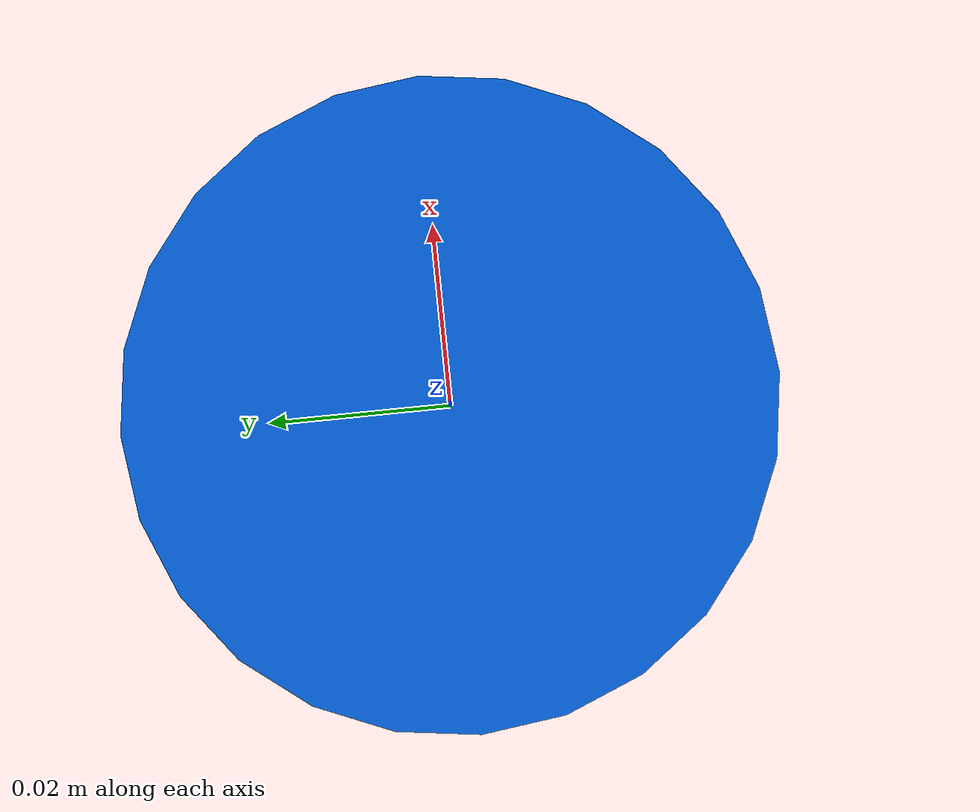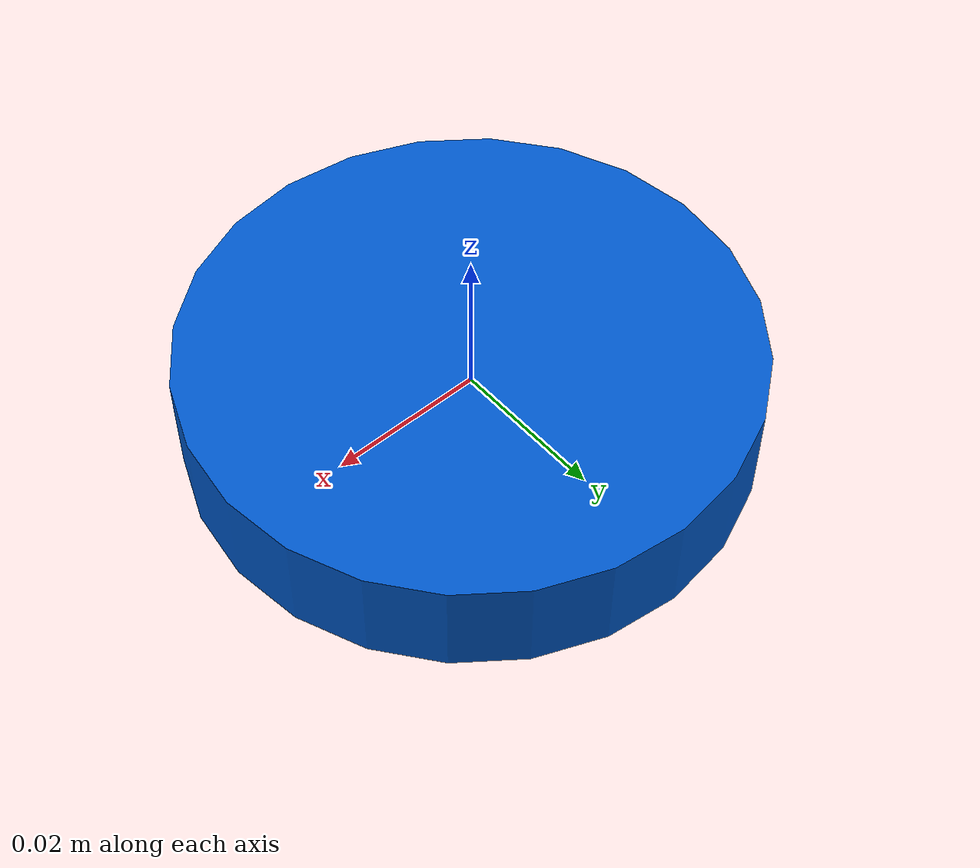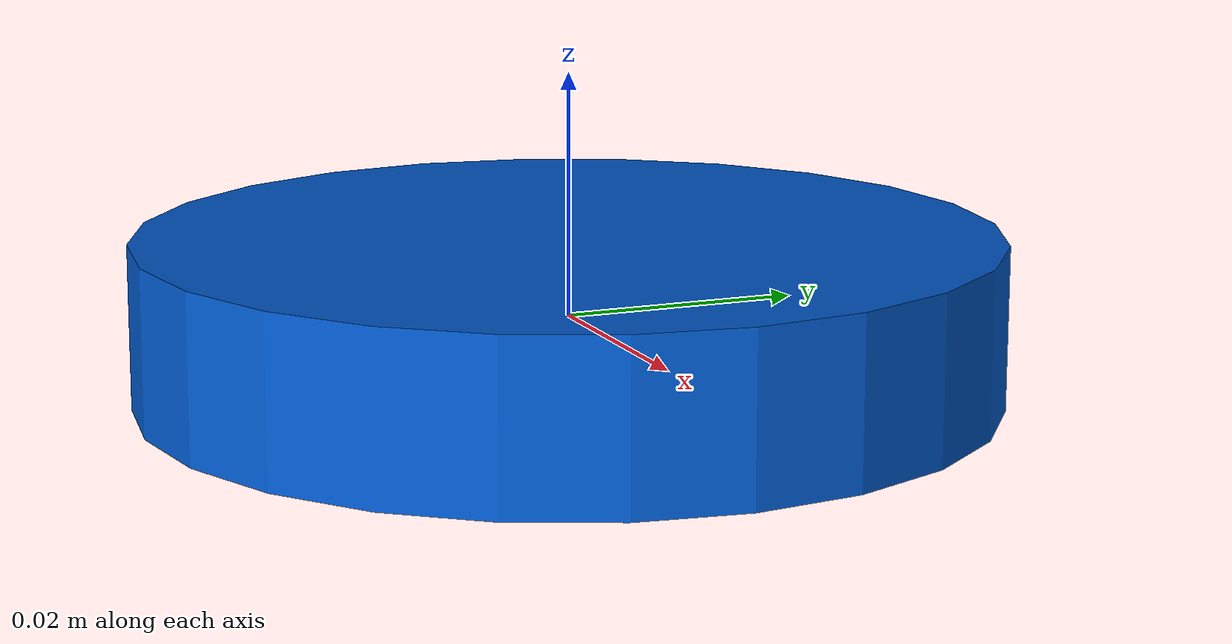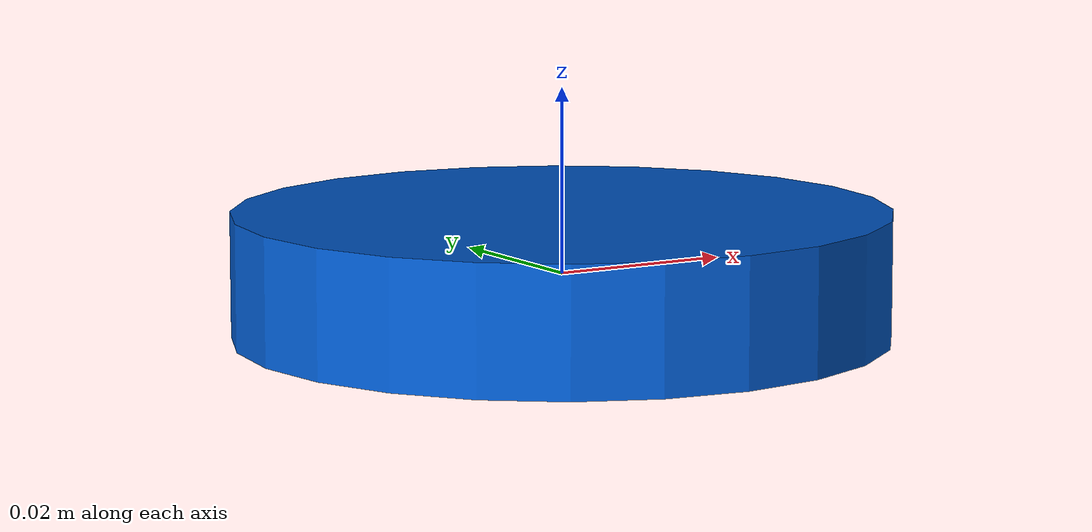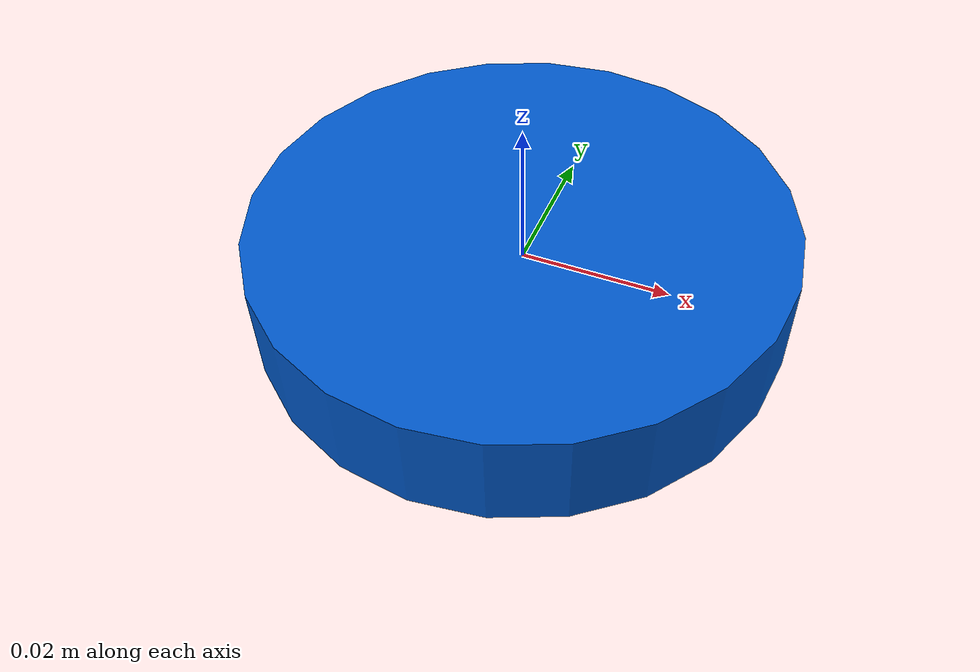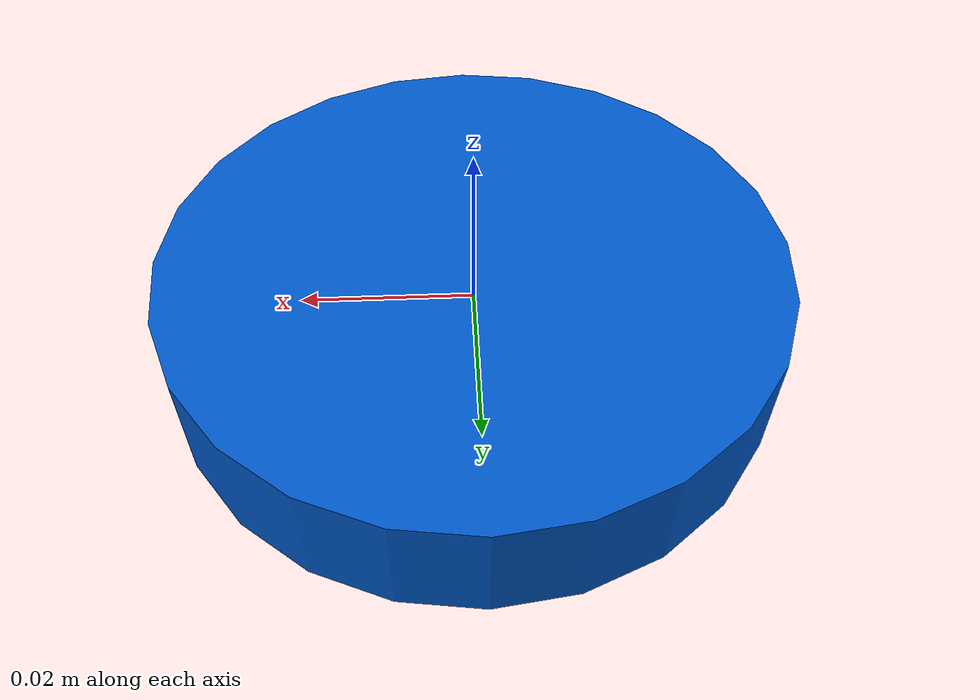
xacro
<?xml version="1.0"?>
<robot xmlns:xacro="http://www.ros.org/wiki/xacro" name="onrobot_quick_changer_qc-r_v3">

<!-- OnRobot Quick Changer, robot side (QC-R v3), alone on a 'parent' link, to view it or to check it with 'check_urdf'. -->

<xacro:arg name="prefix" default="qc_"/>
<xacro:arg name="parent" default="tool0"/>
<xacro:arg name="visual_mesh" default=""/>
<xacro:arg name="collision_mesh" default=""/>

<xacro:include filename="$(find openrosde_onrobot_description)/urdf/onrobot_quick_changer_qc-r_v3.xacro"/>

<link name="$(arg parent)"/>

<xacro:onrobot_qc_r_v3 parent="$(arg parent)" prefix="$(arg prefix)" visual_mesh="$(arg visual_mesh)" collision_mesh="$(arg collision_mesh)">
  <origin xyz="0 0 0" rpy="0 0 0"/>
</xacro:onrobot_qc_r_v3>

</robot>

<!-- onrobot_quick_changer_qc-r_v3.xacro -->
<robot xmlns:xacro="http://www.ros.org/wiki/xacro">

<!-- OnRobot Quick Changer, robot side (QC-R v3), mounted on 'parent' at 'origin'. -->
<!-- 'prefix' starts the name of every link, joint, and material, so the default 'qc_' gives 'qc_robot_mount', 'qc_body', and 'qc_tool_mount'. -->
<!-- The body is drawn as a cylinder of the size of the quick changer, 71 mm across and 13.6 mm thick, centered on 'qc_body' as the meshes of the quick changer are. -->
<!-- The tool side, where a gripper mounts, sits on 'qc_tool_mount', 13.6 mm above 'qc_robot_mount'. -->
<xacro:macro name="onrobot_qc_r_v3" params="parent *origin prefix:=qc_ visual_mesh:='' collision_mesh:=''">

  <link name="${prefix}robot_mount"/>

  <joint name="${prefix}robot_mount_joint" type="fixed">
    <xacro:insert_block name="origin" />
    <parent link="${parent}"/>
    <child link="${prefix}robot_mount"/>
  </joint>

  <link name="${prefix}body">
    <visual>
      <geometry>
        <xacro:if value="${visual_mesh != ''}">
          <mesh filename="${visual_mesh}"/>
        </xacro:if>
        <xacro:unless value="${visual_mesh != ''}">
          <cylinder radius="0.0355" length="0.0136"/>
        </xacro:unless>
      </geometry>
      <material name="${prefix}blue">
        <color rgba="0 0.35 0.8 1"/>
      </material>
    </visual>
    <collision>
      <geometry>
        <xacro:if value="${collision_mesh != ''}">
          <mesh filename="${collision_mesh}"/>
        </xacro:if>
        <xacro:unless value="${collision_mesh != ''}">
          <cylinder radius="0.0355" length="0.0136"/>
        </xacro:unless>
      </geometry>
    </collision>
    <inertial>
      <mass value="0.13"/>
      <origin xyz="0 0 0"/>
      <inertia ixx="4.296185833333333e-05" iyy="4.296185833333333e-05" izz="8.191625e-05" ixy="0" ixz="0" iyz="0"/>
    </inertial>
  </link>

  <joint name="${prefix}robot_joint" type="fixed">
    <parent link="${prefix}robot_mount"/>
    <child link="${prefix}body"/>
    <origin xyz="0 0 0"/>
  </joint>

  <link name="${prefix}tool_mount"/>

  <joint name="${prefix}tool_joint" type="fixed">
    <parent link="${prefix}body"/>
    <child link="${prefix}tool_mount"/>
    <origin xyz="0 0 0.0136"/>
  </joint>

  <!-- Gazebo -->
  <gazebo reference="${prefix}body">
    <mu1>0.8</mu1>
    <mu2>0.8</mu2>
    <kp>1000000.0</kp>
    <kd>1.0</kd>
  </gazebo>

</xacro:macro>

</robot>
